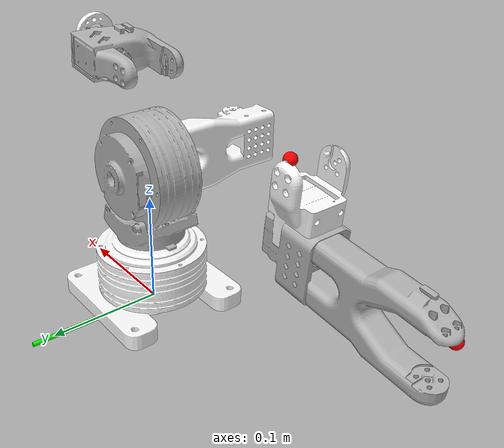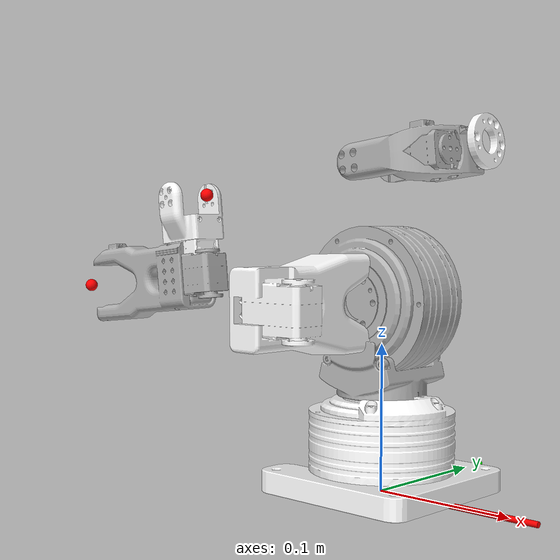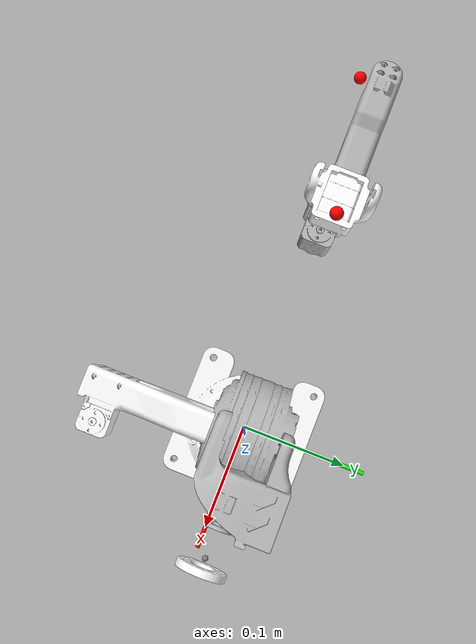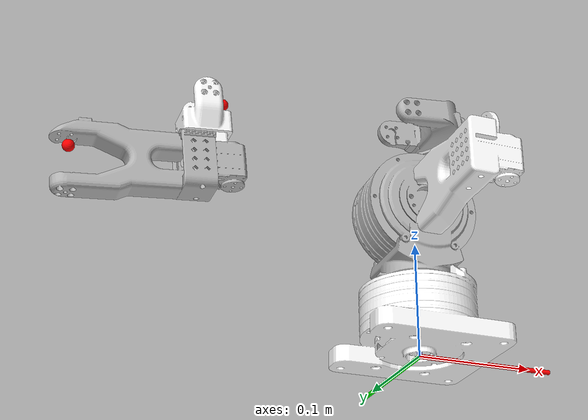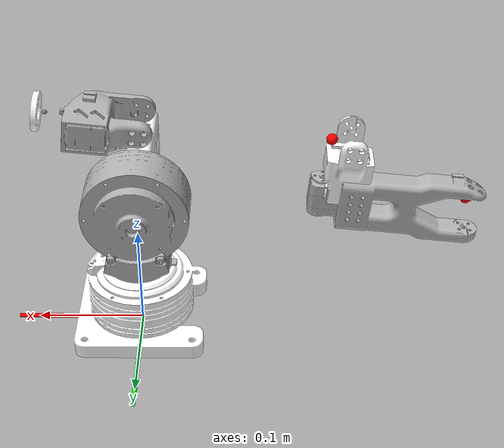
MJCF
<mujoco model="dm6dof">
  <option timestep="0.001" gravity="0 0 -9.80665" integrator="implicitfast" />
  <compiler angle="radian" meshdir="../assets" autolimits="true" />
  <asset>
    <texture type="skybox" builtin="gradient" rgb1="0.3 0.5 0.7" rgb2="0.2 0.2 0.2" width="512" height="3072" />
  </asset>

  <include file="../mjcf/dm6dof_defaults.xml" />
  <include file="../mjcf/dm6dof_assets.xml" />
  <include file="../mjcf/dm6dof_actuators.xml" />
  <include file="../mjcf/dm6dof_sensors.xml" />

  <worldbody>
    <include file="../mjcf/dm6dof_links.xml" />
  </worldbody>

  <keyframe>
    <key name="home" qpos="0 0 0 0 0 0" ctrl="0 0 0 0 0 0" />
    <key name="stand" qpos="0 -0.5 0.5 0 0 0" ctrl="0 -0.5 0.5 0 0 0" />
    <key name="rest" qpos="0 0 0 0 0 0" ctrl="0 0 0 0 0 0" />
  </keyframe>
</mujoco>

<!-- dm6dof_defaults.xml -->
<mujoco model="dm6dof_defaults">
  <default>
    <default class="dm6dof">
      <default class="visual">
        <geom type="mesh" contype="0" conaffinity="0" group="2"/>
      </default>
      <default class="collision">
        <geom group="3"/>
        <default class="finger_collision">
          <geom type="box" solimp="0 1 0.001 0.02 3" solref="0.001 1" friction="2 0.05 0.05" />
        </default>
      </default>
    </default>
    <default class="dm8009">
      <geom contype="0" conaffinity="0"/>
      <joint damping="0.60" frictionloss="0.052" armature="0.028"/>
      <position kp="50" dampratio="1"/>
    </default>
    <default class="dm4340">
      <geom contype="0" conaffinity="0"/>
      <joint damping="0.60" frictionloss="0.052" armature="0.028"/>
      <position kp="50" dampratio="1"/>
    </default>
    <default class="dm4310">
      <geom contype="0" conaffinity="0"/>
      <joint damping="0.60" frictionloss="0.052" armature="0.028"/>
      <position kp="50" dampratio="1"/>
    </default>
  </default>

</mujoco>

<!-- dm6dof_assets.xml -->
<mujoco model="dm6dof_assets">

  <asset>
    <!-- Mesh files -->
    <mesh file="link0.STL"/>
    <mesh file="link1.STL"/>
    <mesh file="link2.STL"/>
    <mesh file="link3.STL"/>
    <mesh file="link4.STL"/>
    <mesh file="link5.STL"/>
    <mesh file="link6.STL"/>

    <!-- Materials -->
    <material name="link0_material" rgba="1 1 1 1"/>
    <material name="link1_material" rgba="0.7 0.7 0.7 1"/>
    <material name="link2_material" rgba="1 1 1 1"/>
    <material name="link3_material" rgba="0.7 0.7 0.7 1"/>
    <material name="link4_material" rgba="1 1 1 1"/>
    <material name="link5_material" rgba="0.7 0.7 0.7 1"/>
    <material name="link6_material" rgba="1 1 1 1"/>

  </asset>

</mujoco>

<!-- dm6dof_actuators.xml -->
<mujoco model="dm6dof_actuators">

  <actuator>
    <position name="joint1" joint="joint1" class="dm8009" kp="2000" kv="150" forcerange="-40 40" ctrlrange="-2.79253 2.79253" />
    <position name="joint2" joint="joint2" class="dm8009" kp="2000" kv="150" forcerange="-40 40" ctrlrange="-3.14159 0" />
    <position name="joint3" joint="joint3" class="dm4340" kp="1600" kv="150" forcerange="-27 27" ctrlrange="0 3.14159" />
    <position name="joint4" joint="joint4" class="dm4310" kp="200" kv="20" forcerange="-7 7" ctrlrange="-2.79253 2.79253" />
    <position name="joint5" joint="joint5" class="dm4310" kp="50" kv="1.5" forcerange="-7 7" ctrlrange="-1.5708 1.5708" />
    <position name="joint6" joint="joint6" class="dm4310" kp="50" kv="1.5" forcerange="-7 7" ctrlrange="-2.79253 2.79253" />
  </actuator>

</mujoco>

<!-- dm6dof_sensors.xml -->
<mujoco model="dm6dof_sensors">

  <sensor>
    <framepos name="eePos" objtype="site" objname="EE"/>
    <framequat name="eeQuat" objtype="site" objname="EE"/>
    <framelinvel name="eeLinVel" objtype="site" objname="EE"/>
    <frameangvel name="eeAngVel" objtype="site" objname="EE"/>
    <gyro name="eeGyro" site="EE"/>
    <accelerometer name="eeAcc" site="EE"/>
    <force name="eeForce" site="EE"/>
  </sensor>

</mujoco>

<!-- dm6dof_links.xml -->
<mujoco model="dm6dof_links">
  <body name="base" childclass="dm6dof">
    <geom type="cylinder" size="0.002 0.06" rgba="1 0 0 1" pos="0.06 0.0 0.0" euler="0 1.57079 0" class="visual" />
    <geom type="cylinder" size="0.002 0.06" rgba="0 1 0 1" pos="0.0 0.06 0.0" euler="1.57079 0 0" class="visual" />
    <geom type="cylinder" size="0.002 0.06" rgba="0 0 1 1" pos="0.0 0.0 0.06" euler="0 0 0" class="visual" />

    <inertial pos="0.0030905 -0.00024462 0.029293" mass="1.3011" fullinertia="0.002694 0.002574 0.002166 0 0 0" />
    <geom type="mesh" class="visual" mesh="link0" material="link0_material" />

    <body name="link1" pos="0 0 0.0585">
      <site name="link1_Site" pos="0.0 0 0.0" rgba="1 0 0 1" />
      <inertial pos="5.6073e-05 -0.00079028 0.063084" quat="0.707118 0.000148927 -0.000137117 0.707095" mass="1.1181" diaginertia="0.005976 0.005669 0.000850999"/>
      <joint name="joint1" pos="0 0 0" axis="0 0 1" type="hinge" range="-2.79253 2.79253" class="dm8009"/>
      <geom type="mesh" class="visual" mesh="link1" material="link1_material" />

      <body name="link2" pos="0 0 0.071" quat="0.707105 0.707108 0 0">
        <inertial pos="-0.19603 -2.3087e-05 0.00068956" quat="0.500232 0.499772 0.500177 0.499819" mass="1.1392" diaginertia="0.05725 0.057057 0.000895999"/>
        <joint name="joint2" pos="0 0 0" axis="0 0 1" type="hinge" range="-3.14159 0" class="dm8009"/>
        <geom type="mesh" class="visual" mesh="link2" material="link2_material" />

        <body name="link3" pos="-0.3 0 0" quat="0.99863 0 0 0.0523361">
          <site name="link3_Site" pos="0.0 0. 0.0182778" rgba="1 0 0 1" />
          <inertial pos="0.068822 0.050855 0.00044972" quat="-0.0204837 0.706732 0.0203332 0.706892" mass="0.63716" diaginertia="0.006139 0.00442624 0.00225276"/>
          <joint name="joint3" pos="0 0 0" axis="0 0 1" type="hinge" range="0 3.14159" class="dm4340"/>
          <geom type="mesh" class="visual" mesh="link3" material="link3_material" />
          <body name="link4" pos="0.11502 0.06 0" quat="0.499998 -0.5 0.500002 -0.5">
            <site name="link4_Site" pos="0.0 0 0.0182778" rgba="1 0 0 1" />
            <inertial pos="4.6861e-05 -0.0033784 0.14947" quat="0.704411 0.00211362 -0.00213176 0.709786" mass="0.49378" diaginertia="0.0128445 0.012827 0.000210545"/>
            <joint name="joint4" pos="0 0 0" axis="0 0 1" type="hinge" range="-2.79253 2.79253" class="dm4310" />
            <geom type="mesh" class="visual" mesh="link4" material="link4_material" />

            <body name="link5" pos="0 0 0.18398" quat="0.499998 0.5 -0.5 0.500002">
              <inertial pos="0.054832 6.3774e-05 0.0042051" quat="0.497447 0.502596 0.501552 0.498387" mass="0.37865" diaginertia="0.00145 0.00140908 0.000184915"/>
              <joint name="joint5" pos="0 0 0" axis="0 0 1" type="hinge" range="-1.5708 1.5708" class="dm4310" />
              <geom type="mesh" class="visual" mesh="link5" material="link5_material" />

              <body name="link6" pos="0.081038 0 0" quat="0.499998 -0.5 0.500002 -0.5">
                <site name="EE" size="0.002" pos="0.0 0.0 0.0" />
                <inertial pos="0.00010011 -0.0002483 0.0073789" quat="0.653301 0.653257 -0.268288 -0.2729" mass="0.0077993" diaginertia="1.02651e-06 9.99999e-07 9.73492e-07"/>
                <joint name="joint6" pos="0 0 0" axis="0 0 1" type="hinge" range="-2.79253 2.79253" class="dm4310" />
                <geom type="mesh" class="visual" mesh="link6" material="link6_material" />

              </body>
            </body>
          </body>
        </body>
      </body>
    </body>
  </body>
</mujoco>
